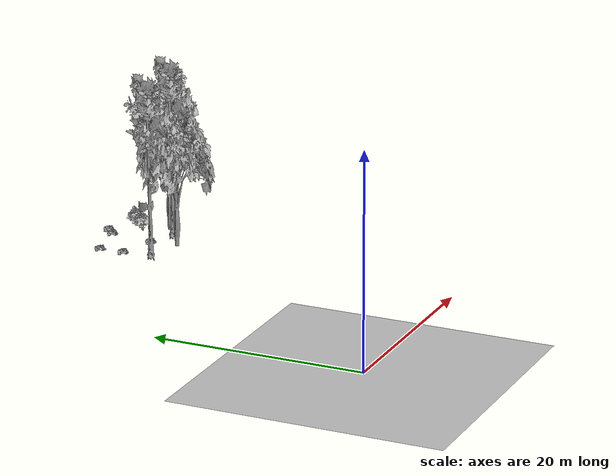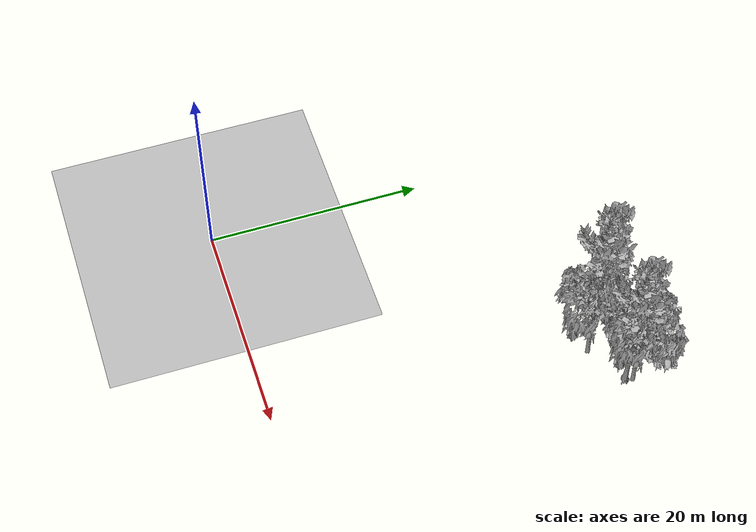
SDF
<sdf version="1.7">
 <world name="default">
  <model name="ground_plane">
   <static>1</static>
   <link name="link">
    <collision name="collision">
     <pose>-50 0 0 0 -0 0</pose>
     <geometry><plane><normal>0 0 1</normal><size>80 80</size></plane></geometry>
     <surface><contact><ode><min_depth>0.01</min_depth><max_vel>0</max_vel></ode></contact></surface>
    </collision>
    <visual name="grass">
     <cast_shadows>0</cast_shadows>
     <geometry>
      <mesh>
       <scale>0.46714285714285714 0.46714285714285714 0.1</scale>
       <uri>file://grass_plane/meshes/grass_plane.dae</uri>
      </mesh>
     </geometry>
    </visual>
   </link>
  </model>
  <model name="Tree 208">
   <static>1</static>
   <pose>25.719909933480423 31.42985614776903 0 1.57079 -0 0</pose>
   <link name="link">
    <collision name="collision">
     <geometry><mesh><scale>3.5 5 3.5</scale><uri>model://tree_2/meshes/tree_2.obj</uri></mesh></geometry>
    </collision>
    <visual name="visual">
     <geometry><mesh><scale>3.5 5 3.5</scale><uri>model://tree_2/meshes/tree_2.obj</uri></mesh></geometry>
    </visual>
   </link>
  </model>
  <model name="Tree 449">
   <static>1</static>
   <pose>21.846305841114933 28.73554733408966 0 1.57079 -0 0</pose>
   <link name="link">
    <collision name="collision">
     <geometry><mesh><scale>3.5 5 3.5</scale><uri>model://tree_2/meshes/tree_2.obj</uri></mesh></geometry>
    </collision>
    <visual name="visual">
     <geometry><mesh><scale>3.5 5 3.5</scale><uri>model://tree_2/meshes/tree_2.obj</uri></mesh></geometry>
    </visual>
   </link>
  </model>
  <model name="Tree 543">
   <static>1</static>
   <pose>25.38331149904687 30.940047347680775 0 1.57079 -0 0</pose>
   <link name="link">
    <collision name="collision">
     <geometry><mesh><scale>3.5 5 3.5</scale><uri>model://tree_9/meshes/tree_9.obj</uri></mesh></geometry>
    </collision>
    <visual name="visual">
     <geometry><mesh><scale>3.5 5 3.5</scale><uri>model://tree_9/meshes/tree_9.obj</uri></mesh></geometry>
    </visual>
   </link>
  </model>
  <model name="Tree 637">
   <static>1</static>
   <pose>19.468785926215084 30.2684180504651 0 1.57079 -0 0</pose>
   <link name="link">
    <collision name="collision">
     <geometry><mesh><scale>3.5 5 3.5</scale><uri>model://tree_9/meshes/tree_9.obj</uri></mesh></geometry>
    </collision>
    <visual name="visual">
     <geometry><mesh><scale>3.5 5 3.5</scale><uri>model://tree_9/meshes/tree_9.obj</uri></mesh></geometry>
    </visual>
   </link>
  </model>
  <model name="Bush 25">
   <static>1</static>
   <pose>22.24847706482349 35.782165781704606 0 1.57079 -0 0</pose>
   <link name="link">
    <collision name="collision">
     <geometry><mesh><scale>2 2 2</scale><uri>model://bush_2/meshes/bush_2.obj</uri></mesh></geometry>
     <surface><contact><collide_without_contact>false</collide_without_contact></contact></surface>
    </collision>
    <visual name="visual">
     <geometry><mesh><scale>2 2 2</scale><uri>model://bush_2/meshes/bush_2.obj</uri></mesh></geometry>
    </visual>
   </link>
  </model>
  <model name="Bush 113">
   <static>1</static>
   <pose>23.163560149976583 36.63710528993134 0 1.57079 -0 0</pose>
   <link name="link">
    <collision name="collision">
     <geometry><mesh><scale>2 2 2</scale><uri>model://bush_2/meshes/bush_2.obj</uri></mesh></geometry>
     <surface><contact><collide_without_contact>false</collide_without_contact></contact></surface>
    </collision>
    <visual name="visual">
     <geometry><mesh><scale>2 2 2</scale><uri>model://bush_2/meshes/bush_2.obj</uri></mesh></geometry>
    </visual>
   </link>
  </model>
  <model name="Bush 186">
   <static>1</static>
   <pose>21.63621750552978 31.388264760654636 0 1.57079 -0 0</pose>
   <link name="link">
    <collision name="collision">
     <geometry><mesh><scale>2 2 2</scale><uri>model://bush_2/meshes/bush_2.obj</uri></mesh></geometry>
     <surface><contact><collide_without_contact>false</collide_without_contact></contact></surface>
    </collision>
    <visual name="visual">
     <geometry><mesh><scale>2 2 2</scale><uri>model://bush_2/meshes/bush_2.obj</uri></mesh></geometry>
    </visual>
   </link>
  </model>
  <model name="Bush 321">
   <static>1</static>
   <pose>18.017281835780132 32.46237993013722 0 1.57079 -0 0</pose>
   <link name="link">
    <collision name="collision">
     <geometry><mesh><scale>2 2 2</scale><uri>model://bush_2/meshes/bush_2.obj</uri></mesh></geometry>
     <surface><contact><collide_without_contact>false</collide_without_contact></contact></surface>
    </collision>
    <visual name="visual">
     <geometry><mesh><scale>2 2 2</scale><uri>model://bush_2/meshes/bush_2.obj</uri></mesh></geometry>
    </visual>
   </link>
  </model>
  <model name="Bush 331">
   <static>1</static>
   <pose>24.40545939648071 33.63462584996499 0 1.57079 -0 0</pose>
   <link name="link">
    <collision name="collision">
     <geometry><mesh><scale>2 2 2</scale><uri>model://bush_1/meshes/bush_1.obj</uri></mesh></geometry>
     <surface><contact><collide_without_contact>false</collide_without_contact></contact></surface>
    </collision>
    <visual name="visual">
     <geometry><mesh><scale>2 2 2</scale><uri>model://bush_1/meshes/bush_1.obj</uri></mesh></geometry>
    </visual>
   </link>
  </model>
  <model name="Bush 446">
   <static>1</static>
   <pose>25.461693151637434 34.74865024160154 0 1.57079 -0 0</pose>
   <link name="link">
    <collision name="collision">
     <geometry><mesh><scale>2 2 2</scale><uri>model://bush_1/meshes/bush_1.obj</uri></mesh></geometry>
     <surface><contact><collide_without_contact>false</collide_without_contact></contact></surface>
    </collision>
    <visual name="visual">
     <geometry><mesh><scale>2 2 2</scale><uri>model://bush_1/meshes/bush_1.obj</uri></mesh></geometry>
    </visual>
   </link>
  </model>
  <model name="Bush 637">
   <static>1</static>
   <pose>17.989064162018792 34.85868811586752 0 1.57079 -0 0</pose>
   <link name="link">
    <collision name="collision">
     <geometry><mesh><scale>2 2 2</scale><uri>model://bush_2/meshes/bush_2.obj</uri></mesh></geometry>
     <surface><contact><collide_without_contact>false</collide_without_contact></contact></surface>
    </collision>
    <visual name="visual">
     <geometry><mesh><scale>2 2 2</scale><uri>model://bush_2/meshes/bush_2.obj</uri></mesh></geometry>
    </visual>
   </link>
  </model>
 </world>
</sdf>
